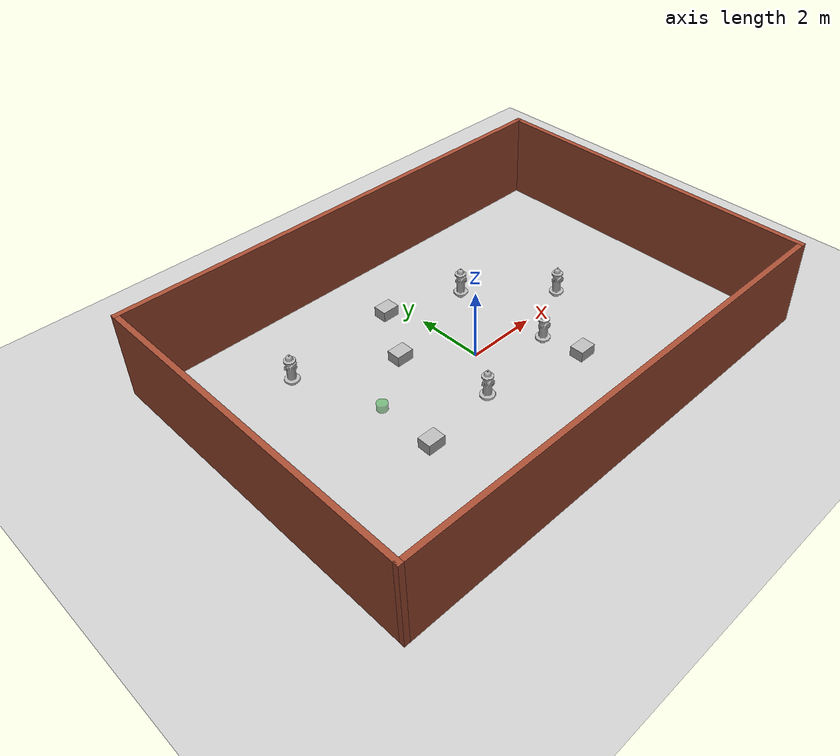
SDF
<sdf version="1.7">
 <world name="default">
  <light name="sun" type="directional">
   <pose>0 0 10 0 -0 0</pose>
   <diffuse>0.8 0.8 0.8 1</diffuse>
   <specular>0.2 0.2 0.2 1</specular>
   <attenuation>
    <range>1000</range>
    <constant>0.9</constant>
    <linear>0.01</linear>
    <quadratic>0.001</quadratic>
   </attenuation>
   <direction>-0.5 0.1 -0.9</direction>
   <spot><inner_angle>0</inner_angle><outer_angle>0</outer_angle><falloff>0</falloff></spot>
  </light>
  <model name="ground_plane">
   <static>1</static>
   <link name="link">
    <collision name="collision">
     <geometry><plane><normal>0 0 1</normal><size>100 100</size></plane></geometry>
     <surface>
      <contact><collide_bitmask>65535</collide_bitmask></contact>
      <friction><ode><mu>100</mu><mu2>50</mu2></ode></friction>
     </surface>
    </collision>
    <visual name="visual">
     <cast_shadows>0</cast_shadows>
     <geometry><plane><normal>0 0 1</normal><size>100 100</size></plane></geometry>
     <material>
      <script><uri>file://media/materials/scripts/gazebo.material</uri><name>Gazebo/Grey</name></script>
     </material>
    </visual>
   </link>
  </model>
  <gravity>0 0 -9.8</gravity>
  <magnetic_field>6e-06 2.3e-05 -4.2e-05</magnetic_field>
  <atmosphere type="adiabatic"/>
  <physics type="ode">
   <max_step_size>0.001</max_step_size>
   <real_time_factor>1</real_time_factor>
   <real_time_update_rate>1000</real_time_update_rate>
  </physics>
  <scene><ambient>0.4 0.4 0.4 1</ambient><background>0.7 0.7 0.7 1</background><shadows>1</shadows></scene>
  <spherical_coordinates>
   <surface_model>EARTH_WGS84</surface_model>
   <latitude_deg>0</latitude_deg>
   <longitude_deg>0</longitude_deg>
   <elevation>0</elevation>
   <heading_deg>0</heading_deg>
  </spherical_coordinates>
  <model name="lv0">
   <link name="Wall_0">
    <collision name="Wall_0_Collision">
     <geometry><box><size>10 0.15 2.5</size></box></geometry>
     <pose>0 0 1.25 0 -0 0</pose>
    </collision>
    <visual name="Wall_0_Visual">
     <pose>0 0 1.25 0 -0 0</pose>
     <geometry><box><size>10 0.15 2.5</size></box></geometry>
     <material>
      <script><uri>file://media/materials/scripts/gazebo.material</uri><name>Gazebo/Bricks</name></script>
      <ambient>1 1 1 1</ambient>
     </material>
     <meta><layer>0</layer></meta>
    </visual>
    <pose>-6.925 0 0 0 -0 1.5708</pose>
   </link>
   <link name="Wall_1">
    <collision name="Wall_1_Collision">
     <geometry><box><size>14 0.15 2.5</size></box></geometry>
     <pose>0 0 1.25 0 -0 0</pose>
    </collision>
    <visual name="Wall_1_Visual">
     <pose>0 0 1.25 0 -0 0</pose>
     <geometry><box><size>14 0.15 2.5</size></box></geometry>
     <material>
      <script><uri>file://media/materials/scripts/gazebo.material</uri><name>Gazebo/Bricks</name></script>
      <ambient>1 1 1 1</ambient>
     </material>
     <meta><layer>0</layer></meta>
    </visual>
    <pose>-0 4.925 0 0 -0 0</pose>
   </link>
   <link name="Wall_2">
    <collision name="Wall_2_Collision">
     <geometry><box><size>10 0.15 2.5</size></box></geometry>
     <pose>0 0 1.25 0 -0 0</pose>
    </collision>
    <visual name="Wall_2_Visual">
     <pose>0 0 1.25 0 -0 0</pose>
     <geometry><box><size>10 0.15 2.5</size></box></geometry>
     <material>
      <script><uri>file://media/materials/scripts/gazebo.material</uri><name>Gazebo/Bricks</name></script>
      <ambient>1 1 1 1</ambient>
     </material>
     <meta><layer>0</layer></meta>
    </visual>
    <pose>6.925 0 0 0 -0 -1.5708</pose>
   </link>
   <link name="Wall_3">
    <collision name="Wall_3_Collision">
     <geometry><box><size>14 0.15 2.5</size></box></geometry>
     <pose>0 0 1.25 0 -0 0</pose>
    </collision>
    <visual name="Wall_3_Visual">
     <pose>0 0 1.25 0 -0 0</pose>
     <geometry><box><size>14 0.15 2.5</size></box></geometry>
     <material>
      <script><uri>file://media/materials/scripts/gazebo.material</uri><name>Gazebo/Bricks</name></script>
      <ambient>1 1 1 1</ambient>
     </material>
     <meta><layer>0</layer></meta>
    </visual>
    <pose>-0 -4.925 0 0 -0 3.14159</pose>
   </link>
   <static>1</static>
  </model>
  <model name="goal_area">
   <pose>-3.01707 0.219244 -0.3 0 -0 0</pose>
   <link name="link">
    <inertial>
     <mass>1</mass>
     <inertia><ixx>0.145833</ixx><ixy>0</ixy><ixz>0</ixz><iyy>0.145833</iyy><iyz>0</iyz><izz>0.125</izz></inertia>
    </inertial>
    <visual name="visual">
     <transparency>0.5</transparency>
     <geometry><cylinder><radius>0.15</radius><length>1</length></cylinder></geometry>
     <material>
      <script><name>Gazebo/Green</name><uri>file://media/materials/scripts/gazebo.material</uri></script>
     </material>
    </visual>
    <gravity>0</gravity>
   </link>
  </model>
  <model name="cardboard_box">
   <pose>-1.47009 1.27538 0.15 0 -0 0</pose>
   <link name="link">
    <inertial>
     <mass>2</mass>
     <inertia>
      <ixx>0.0416667</ixx>
      <ixy>0</ixy>
      <ixz>0</ixz>
      <iyy>0.0566667</iyy>
      <iyz>0</iyz>
      <izz>0.0683333</izz>
     </inertia>
    </inertial>
    <collision name="collision">
     <geometry><box><size>0.5 0.4 0.3</size></box></geometry>
     <surface>
      <friction><ode><mu>1</mu><mu2>1</mu2></ode></friction>
      <contact><ode><kp>1e+07</kp><kd>1</kd><min_depth>0.001</min_depth><max_vel>0.1</max_vel></ode></contact>
     </surface>
    </collision>
    <visual name="visual">
     <pose>0 0 -0.15 0 -0 0</pose>
     <geometry>
      <mesh><uri>model://cardboard_box/meshes/cardboard_box.dae</uri><scale>1.25932 1.00745 0.755591</scale></mesh>
     </geometry>
    </visual>
   </link>
  </model>
  <model name="cardboard_box_0">
   <pose>1.97504 -1.95278 0.15 0 -0 0</pose>
   <link name="link">
    <inertial>
     <mass>2</mass>
     <inertia>
      <ixx>0.0416667</ixx>
      <ixy>0</ixy>
      <ixz>0</ixz>
      <iyy>0.0566667</iyy>
      <iyz>0</iyz>
      <izz>0.0683333</izz>
     </inertia>
    </inertial>
    <collision name="collision">
     <geometry><box><size>0.5 0.4 0.3</size></box></geometry>
     <surface>
      <friction><ode><mu>1</mu><mu2>1</mu2></ode></friction>
      <contact><ode><kp>1e+07</kp><kd>1</kd><min_depth>0.001</min_depth><max_vel>0.1</max_vel></ode></contact>
     </surface>
    </collision>
    <visual name="visual">
     <pose>0 0 -0.15 0 -0 0</pose>
     <geometry>
      <mesh><uri>model://cardboard_box/meshes/cardboard_box.dae</uri><scale>1.25932 1.00745 0.755591</scale></mesh>
     </geometry>
    </visual>
   </link>
  </model>
  <model name="fire_hydrant">
   <static>1</static>
   <link name="link">
    <collision name="collision">
     <geometry><mesh><uri>model://fire_hydrant/meshes/fire_hydrant.dae</uri></mesh></geometry>
    </collision>
    <visual name="visual">
     <geometry><mesh><uri>model://fire_hydrant/meshes/fire_hydrant.dae</uri></mesh></geometry>
    </visual>
   </link>
   <pose>-0.952786 -1.35378 0 0 -0 0</pose>
  </model>
  <model name="fire_hydrant_0">
   <static>1</static>
   <link name="link">
    <collision name="collision">
     <geometry><mesh><uri>model://fire_hydrant/meshes/fire_hydrant.dae</uri></mesh></geometry>
    </collision>
    <visual name="visual">
     <geometry><mesh><uri>model://fire_hydrant/meshes/fire_hydrant.dae</uri></mesh></geometry>
    </visual>
   </link>
   <pose>1.53696 2.09784 0 0 -0 0</pose>
  </model>
  <model name="fire_hydrant_1">
   <static>1</static>
   <link name="link">
    <collision name="collision">
     <geometry><mesh><uri>model://fire_hydrant/meshes/fire_hydrant.dae</uri></mesh></geometry>
    </collision>
    <visual name="visual">
     <geometry><mesh><uri>model://fire_hydrant/meshes/fire_hydrant.dae</uri></mesh></geometry>
    </visual>
   </link>
   <pose>3.44752 0.209835 0 0 -0 0</pose>
  </model>
  <model name="cardboard_box_1">
   <pose>-3.02391 -1.54144 0.15 0 -0 0</pose>
   <link name="link">
    <inertial>
     <mass>2</mass>
     <inertia>
      <ixx>0.0416667</ixx>
      <ixy>0</ixy>
      <ixz>0</ixz>
      <iyy>0.0566667</iyy>
      <iyz>0</iyz>
      <izz>0.0683333</izz>
     </inertia>
    </inertial>
    <collision name="collision">
     <geometry><box><size>0.5 0.4 0.3</size></box></geometry>
     <surface>
      <friction><ode><mu>1</mu><mu2>1</mu2></ode></friction>
      <contact><ode><kp>1e+07</kp><kd>1</kd><min_depth>0.001</min_depth><max_vel>0.1</max_vel></ode></contact>
     </surface>
    </collision>
    <visual name="visual">
     <pose>0 0 -0.15 0 -0 0</pose>
     <geometry>
      <mesh><uri>model://cardboard_box/meshes/cardboard_box.dae</uri><scale>1.25932 1.00745 0.755591</scale></mesh>
     </geometry>
    </visual>
   </link>
  </model>
  <model name="fire_hydrant_2">
   <static>1</static>
   <link name="link">
    <collision name="collision">
     <geometry><mesh><uri>model://fire_hydrant/meshes/fire_hydrant.dae</uri></mesh></geometry>
    </collision>
    <visual name="visual">
     <geometry><mesh><uri>model://fire_hydrant/meshes/fire_hydrant.dae</uri></mesh></geometry>
    </visual>
   </link>
   <pose>1.66543 -0.863205 0 0 -0 0</pose>
  </model>
  <model name="cardboard_box_2">
   <pose>-0.51011 2.916 0.15 0 -0 0</pose>
   <link name="link">
    <inertial>
     <mass>2</mass>
     <inertia>
      <ixx>0.0416667</ixx>
      <ixy>0</ixy>
      <ixz>0</ixz>
      <iyy>0.0566667</iyy>
      <iyz>0</iyz>
      <izz>0.0683333</izz>
     </inertia>
    </inertial>
    <collision name="collision">
     <geometry><box><size>0.5 0.4 0.3</size></box></geometry>
     <surface>
      <friction><ode><mu>1</mu><mu2>1</mu2></ode></friction>
      <contact><ode><kp>1e+07</kp><kd>1</kd><min_depth>0.001</min_depth><max_vel>0.1</max_vel></ode></contact>
     </surface>
    </collision>
    <visual name="visual">
     <pose>0 0 -0.15 0 -0 0</pose>
     <geometry>
      <mesh><uri>model://cardboard_box/meshes/cardboard_box.dae</uri><scale>1.25932 1.00745 0.755591</scale></mesh>
     </geometry>
    </visual>
   </link>
  </model>
  <model name="fire_hydrant_3">
   <static>1</static>
   <link name="link">
    <collision name="collision">
     <geometry><mesh><uri>model://fire_hydrant/meshes/fire_hydrant.dae</uri></mesh></geometry>
    </collision>
    <visual name="visual">
     <geometry><mesh><uri>model://fire_hydrant/meshes/fire_hydrant.dae</uri></mesh></geometry>
    </visual>
   </link>
   <pose>-3.98807 2.53102 0 0 -0 0</pose>
  </model>
 </world>
</sdf>
